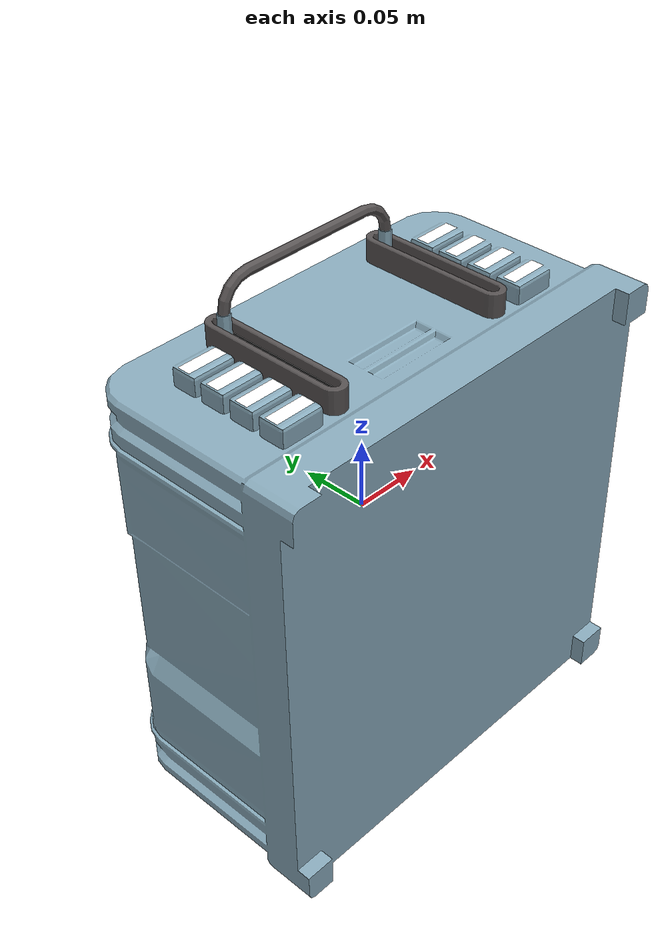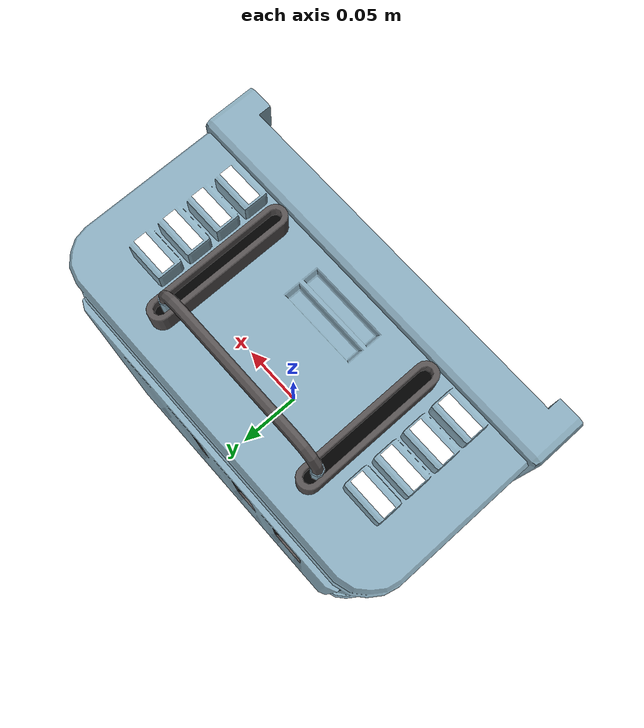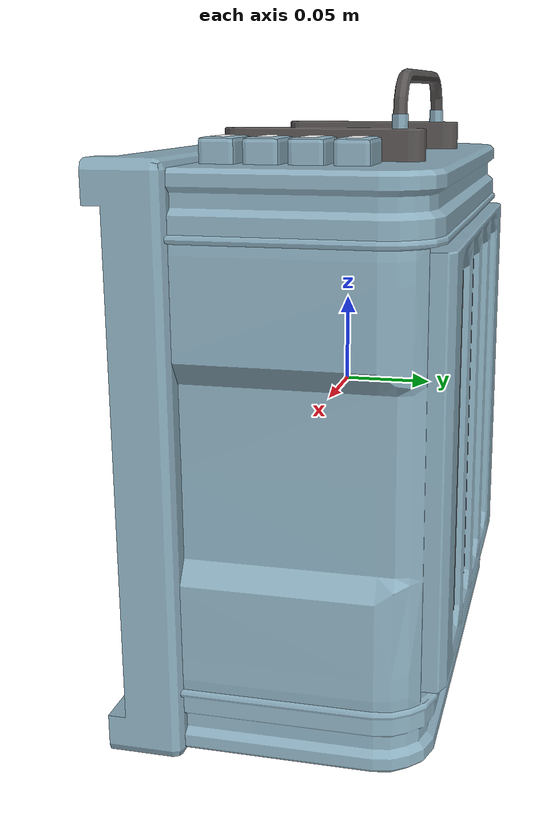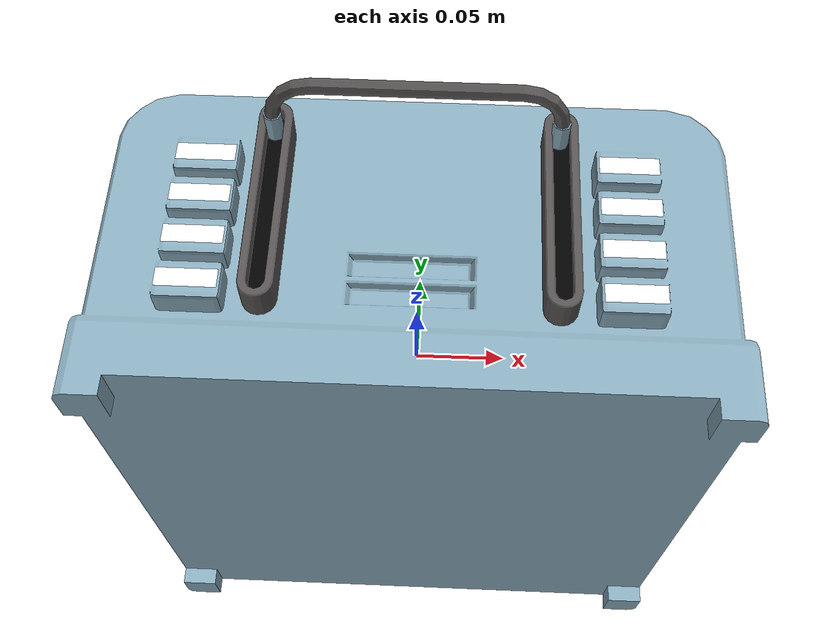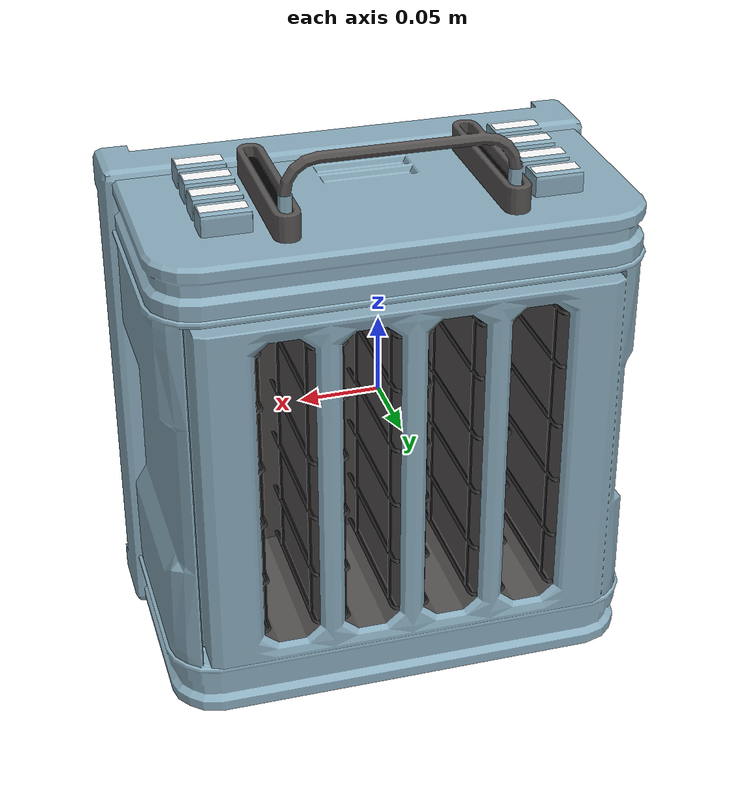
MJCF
<mujoco model="Toaster_24">
  <default>
    <default class="visual">
      <geom group="2" type="mesh" contype="0" conaffinity="0"/>
    </default>
    <default class="collision">
      <geom group="3" type="mesh"/>
    </default>
  </default>
  <asset>
    <material name="Toaster_Primary2_Mat" specular="0.5" shininess="0.5" rgba="0.5352508 0.6690729 0.7352941 1.0"/>
    <material name="Toaster_Metal_Mat" specular="0.5" shininess="0.5" rgba="0.3382353 0.3208261 0.3208261 1.0"/>
    <material name="Toaster_Interior_Mat" specular="0.5" shininess="0.5" rgba="0 0 0 1.0"/>
    <material name="Toaster_Decal_Mat" specular="0.5" shininess="0.5" rgba="1 1 1 1.0"/>
    <material name="Toaster_Coils_Off_Mat" specular="0.5" shininess="0.5" rgba="0.1603774 0.1603774 0.1603774 1.0"/>
    <mesh file="Toaster_24_0.obj"/>
    <mesh file="Toaster_24_1.obj"/>
    <mesh file="Toaster_24_2.obj"/>
    <mesh file="Toaster_24_3.obj"/>
    <mesh file="Toaster_24_4.obj"/>
    <mesh file="Toaster_24_collision_0.obj"/>
    <mesh file="Toaster_24_collision_1.obj"/>
    <mesh file="Toaster_24_collision_2.obj"/>
    <mesh file="Toaster_24_collision_3.obj"/>
    <mesh file="Toaster_24_collision_4.obj"/>
    <mesh file="Toaster_24_collision_5.obj"/>
    <mesh file="Toaster_24_collision_6.obj"/>
    <mesh file="Toaster_24_collision_7.obj"/>
    <mesh file="Toaster_24_collision_8.obj"/>
    <mesh file="Toaster_24_collision_9.obj"/>
    <mesh file="Toaster_24_collision_10.obj"/>
    <mesh file="Toaster_24_collision_11.obj"/>
    <mesh file="Toaster_24_collision_12.obj"/>
    <mesh file="Toaster_24_collision_13.obj"/>
    <mesh file="Toaster_24_collision_14.obj"/>
    <mesh file="Toaster_24_collision_15.obj"/>
    <mesh file="Toaster_24_collision_16.obj"/>
    <mesh file="Toaster_24_collision_17.obj"/>
    <mesh file="Toaster_24_collision_18.obj"/>
    <mesh file="Toaster_24_collision_19.obj"/>
    <mesh file="Toaster_24_collision_20.obj"/>
    <mesh file="Toaster_24_collision_21.obj"/>
    <mesh file="Toaster_24_collision_22.obj"/>
    <mesh file="Toaster_24_collision_23.obj"/>
    <mesh file="Toaster_24_collision_24.obj"/>
    <mesh file="Toaster_24_collision_25.obj"/>
    <mesh file="Toaster_24_collision_26.obj"/>
    <mesh file="Toaster_24_collision_27.obj"/>
    <mesh file="Toaster_24_collision_28.obj"/>
    <mesh file="Toaster_24_collision_29.obj"/>
  </asset>
  <worldbody>
    <body name="Toaster_24">
      <geom mesh="Toaster_24_0" material="Toaster_Coils_Off_Mat" class="visual"/>
      <geom mesh="Toaster_24_1" material="Toaster_Decal_Mat" class="visual"/>
      <geom mesh="Toaster_24_2" material="Toaster_Interior_Mat" class="visual"/>
      <geom mesh="Toaster_24_3" material="Toaster_Metal_Mat" class="visual"/>
      <geom mesh="Toaster_24_4" material="Toaster_Primary2_Mat" class="visual"/>
      <geom mesh="Toaster_24_collision_0" rgba="0.027709459879449283 0.7945590094710502 0.7588305576420117 1" class="collision"/>
      <geom mesh="Toaster_24_collision_1" rgba="0.25376551542414316 0.21653747657588263 0.9880875341591624 1" class="collision"/>
      <geom mesh="Toaster_24_collision_2" rgba="0.06855793105984043 0.37766632768071273 0.3909555507177995 1" class="collision"/>
      <geom mesh="Toaster_24_collision_3" rgba="0.19008823920584084 0.037483593177119134 0.27072436387753274 1" class="collision"/>
      <geom mesh="Toaster_24_collision_4" rgba="0.7615042229943189 0.2061887402218493 0.031826351855318014 1" class="collision"/>
      <geom mesh="Toaster_24_collision_5" rgba="0.22261182665714152 0.4381065134210519 0.7013042984517919 1" class="collision"/>
      <geom mesh="Toaster_24_collision_6" rgba="0.894321908927424 0.4536319604838205 0.8097291416831373 1" class="collision"/>
      <geom mesh="Toaster_24_collision_7" rgba="0.8108274715137885 0.9973991682954073 0.7213550643347628 1" class="collision"/>
      <geom mesh="Toaster_24_collision_8" rgba="0.8520948595463593 0.06110335022027391 0.19016214314666668 1" class="collision"/>
      <geom mesh="Toaster_24_collision_9" rgba="0.060616646293474075 0.5464959600815451 0.566878853276555 1" class="collision"/>
      <geom mesh="Toaster_24_collision_10" rgba="0.5592866068207136 0.38510842215702223 0.4969778251781257 1" class="collision"/>
      <geom mesh="Toaster_24_collision_11" rgba="0.5901251774557835 0.3588068408551418 0.3999231222812454 1" class="collision"/>
      <geom mesh="Toaster_24_collision_12" rgba="0.00025034903103937634 0.5370535859234932 0.5537510949778082 1" class="collision"/>
      <geom mesh="Toaster_24_collision_13" rgba="0.8065951678245049 0.7917194530736306 0.20216814864681387 1" class="collision"/>
      <geom mesh="Toaster_24_collision_14" rgba="0.12873685533429846 0.7195746874443834 0.3899044982052563 1" class="collision"/>
      <geom mesh="Toaster_24_collision_15" rgba="0.022158678836316503 0.6848086294855512 0.2261782820816629 1" class="collision"/>
      <geom mesh="Toaster_24_collision_16" rgba="0.5450797264435197 0.41275113183949896 0.17620719194377177 1" class="collision"/>
      <geom mesh="Toaster_24_collision_17" rgba="0.5852345463774056 0.8119048573074281 0.6829220141968575 1" class="collision"/>
      <geom mesh="Toaster_24_collision_18" rgba="0.6771239839565132 0.4291692434112794 0.019193567980156145 1" class="collision"/>
      <geom mesh="Toaster_24_collision_19" rgba="0.9168331309082705 0.9155144004534489 0.6760663957006516 1" class="collision"/>
      <geom mesh="Toaster_24_collision_20" rgba="0.5179455882863438 0.34464940423894763 0.3526158072027138 1" class="collision"/>
      <geom mesh="Toaster_24_collision_21" rgba="0.061856369580212345 0.13521124512245786 0.08346884237768049 1" class="collision"/>
      <geom mesh="Toaster_24_collision_22" rgba="0.6723837341365039 0.898384584631882 0.5510956375998455 1" class="collision"/>
      <geom mesh="Toaster_24_collision_23" rgba="0.9198267931603293 0.9033287312605824 0.05381160169098387 1" class="collision"/>
      <geom mesh="Toaster_24_collision_24" rgba="0.1493464809714009 0.39489500423901314 0.35720994298756004 1" class="collision"/>
      <geom mesh="Toaster_24_collision_25" rgba="0.28511460933377264 0.4641024778049724 0.7257258260023406 1" class="collision"/>
      <geom mesh="Toaster_24_collision_26" rgba="0.9318758745735148 0.7979621254279993 0.6228986498095588 1" class="collision"/>
      <geom mesh="Toaster_24_collision_27" rgba="0.1597451236312657 0.29110452232408524 0.1376118873708595 1" class="collision"/>
      <geom mesh="Toaster_24_collision_28" rgba="0.30660343232094756 0.8821899539689968 0.04454557512508983 1" class="collision"/>
      <geom mesh="Toaster_24_collision_29" rgba="0.6686493331986342 0.32478246304779956 0.7121646774153806 1" class="collision"/>
    </body>
  </worldbody>
</mujoco>
